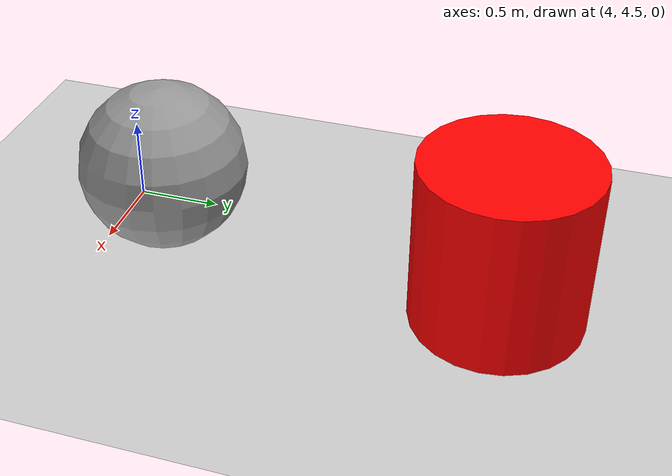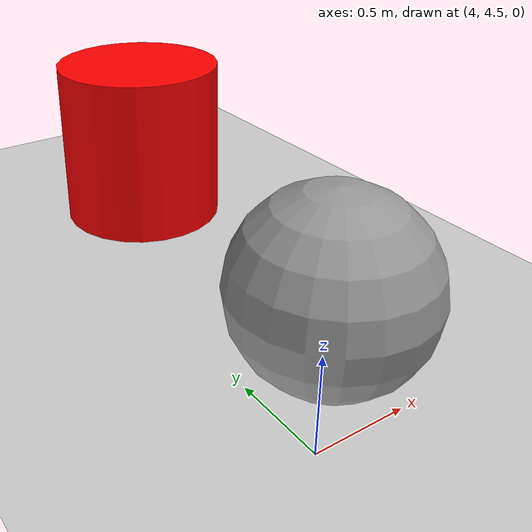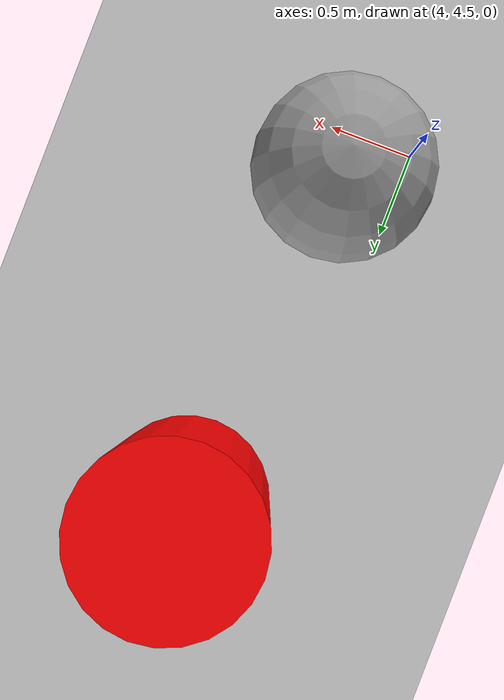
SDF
<sdf version="1.6">
 <world name="default">
  <light name="sun" type="directional">
   <pose>0 0 10 0 -0 0</pose>
   <diffuse>0.8 0.8 0.8 1</diffuse>
   <specular>0.2 0.2 0.2 1</specular>
   <attenuation>
    <range>1000</range>
    <constant>0.9</constant>
    <linear>0.01</linear>
    <quadratic>0.001</quadratic>
   </attenuation>
   <direction>-0.5 0.1 -0.9</direction>
  </light>
  <model name="ground_plane">
   <static>1</static>
   <link name="link">
    <collision name="collision">
     <geometry><plane><normal>0 0 1</normal><size>100 100</size></plane></geometry>
     <surface>
      <contact><collide_bitmask>65535</collide_bitmask></contact>
      <friction><ode><mu>100</mu><mu2>50</mu2></ode></friction>
     </surface>
    </collision>
    <visual name="visual">
     <cast_shadows>0</cast_shadows>
     <geometry><plane><normal>0 0 1</normal><size>100 100</size></plane></geometry>
     <material>
      <script><uri>file://media/materials/scripts/gazebo.material</uri><name>Gazebo/Grey</name></script>
     </material>
    </visual>
   </link>
  </model>
  <gravity>0 0 -9.8</gravity>
  <magnetic_field>6e-06 2.3e-05 -4.2e-05</magnetic_field>
  <atmosphere type="adiabatic"/>
  <physics name="default_physics" default="0" type="ode">
   <max_step_size>0.001</max_step_size>
   <real_time_factor>1</real_time_factor>
   <real_time_update_rate>1000</real_time_update_rate>
  </physics>
  <scene><ambient>0.4 0.4 0.4 1</ambient><background>0.7 0.7 0.7 1</background><shadows>1</shadows></scene>
  <audio><device>default</device></audio>
  <spherical_coordinates>
   <surface_model>EARTH_WGS84</surface_model>
   <latitude_deg>0</latitude_deg>
   <longitude_deg>0</longitude_deg>
   <elevation>0</elevation>
   <heading_deg>0</heading_deg>
  </spherical_coordinates>
  <model name="unit_sphere">
   <pose>4.35298 4.84014 0.5 0 -0 0</pose>
   <link name="link">
    <inertial>
     <mass>1</mass>
     <inertia><ixx>0.1</ixx><ixy>0</ixy><ixz>0</ixz><iyy>0.1</iyy><iyz>0</iyz><izz>0.1</izz></inertia>
    </inertial>
    <collision name="collision"><geometry><sphere><radius>0.5</radius></sphere></geometry></collision>
    <visual name="visual">
     <geometry><sphere><radius>0.5</radius></sphere></geometry>
     <material>
      <script><name>Gazebo/Grey</name><uri>file://media/materials/scripts/gazebo.material</uri></script>
     </material>
    </visual>
   </link>
  </model>
  <model name="unit_cylinder">
   <link name="link">
    <inertial>
     <mass>1</mass>
     <inertia><ixx>0.145833</ixx><ixy>0</ixy><ixz>0</ixz><iyy>0.145833</iyy><iyz>0</iyz><izz>0.125</izz></inertia>
    </inertial>
    <pose>2.20934 2.11114 -0 0 -0 0</pose>
    <visual name="visual">
     <geometry><cylinder><radius>0.5</radius><length>1</length></cylinder></geometry>
     <material>
      <script><name>Gazebo/Grey</name><uri>file://media/materials/scripts/gazebo.material</uri></script>
      <ambient>1 0 0 0</ambient>
      <shader type="vertex"><normal_map>__default__</normal_map></shader>
      <diffuse>0.7 0.7 0.7 1</diffuse>
      <specular>0.01 0.01 0.01 1</specular>
      <emissive>0 0 0 1</emissive>
     </material>
    </visual>
    <collision name="collision">
     <geometry><cylinder><radius>0.5</radius><length>1</length></cylinder></geometry>
     <surface>
      <friction>
       <ode><mu>1</mu><mu2>1</mu2><fdir1>0 0 0</fdir1><slip1>0</slip1><slip2>0</slip2></ode>
       <torsional>
        <coefficient>1</coefficient>
        <patch_radius>0</patch_radius>
        <surface_radius>0</surface_radius>
        <use_patch_radius>1</use_patch_radius>
        <ode><slip>0</slip></ode>
       </torsional>
      </friction>
      <bounce><restitution_coefficient>0</restitution_coefficient><threshold>1e+06</threshold></bounce>
      <contact>
       <collide_without_contact>0</collide_without_contact>
       <collide_without_contact_bitmask>1</collide_without_contact_bitmask>
       <collide_bitmask>1</collide_bitmask>
       <ode>
        <soft_cfm>0</soft_cfm>
        <soft_erp>0.2</soft_erp>
        <kp>1e+13</kp>
        <kd>1</kd>
        <max_vel>0.01</max_vel>
        <min_depth>0</min_depth>
       </ode>
       <bullet>
        <split_impulse>1</split_impulse>
        <split_impulse_penetration_threshold>-0.01</split_impulse_penetration_threshold>
        <soft_cfm>0</soft_cfm>
        <soft_erp>0.2</soft_erp>
        <kp>1e+13</kp>
        <kd>1</kd>
       </bullet>
      </contact>
     </surface>
    </collision>
   </link>
   <static>1</static>
   <allow_auto_disable>0</allow_auto_disable>
   <pose>2.30913 4.78329 0.5 0 -0 0</pose>
  </model>
 </world>
</sdf>
